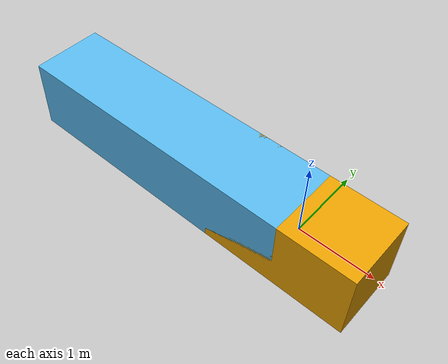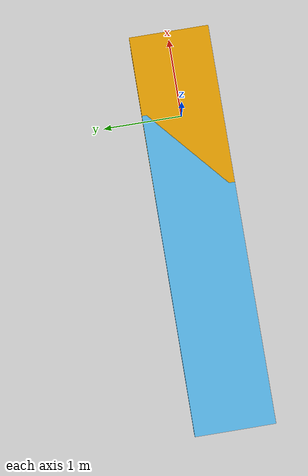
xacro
<?xml version="1.0"?>
<robot name="truck" xmlns:xacro="http://ros.org/wiki/xacro">

    <xacro:property name="head_length"  value="2" />
    <xacro:property name="head_width"   value="1" />
    <xacro:property name="head_height"  value="1" />

    <xacro:property name="tail_length"  value="4" />
    <xacro:property name="tail_width"   value="1" />
    <xacro:property name="tail_height"  value="1" />

    <link name="head">
        <visual>
            <geometry>
                <box size="${head_length} ${head_width} ${head_height}" />
            </geometry>
        </visual>
    </link>

    <link name="tail">
        <visual>
            <geometry>
                <box size="${tail_length} ${tail_width} ${tail_height}" />
            </geometry>
            <origin xyz="-1.5 0 0"/>
        </visual>
    </link>

    <joint name="link" type="revolute">
        <parent link="head"/>
        <child link="tail"/>
        <axis xyz="0 0 1"/>
        <limit effort="1000.0" lower="-1.57" upper="1.57" velocity="10" />
        <origin xyz="-0.5 0 0"/>
    </joint>

</robot>
